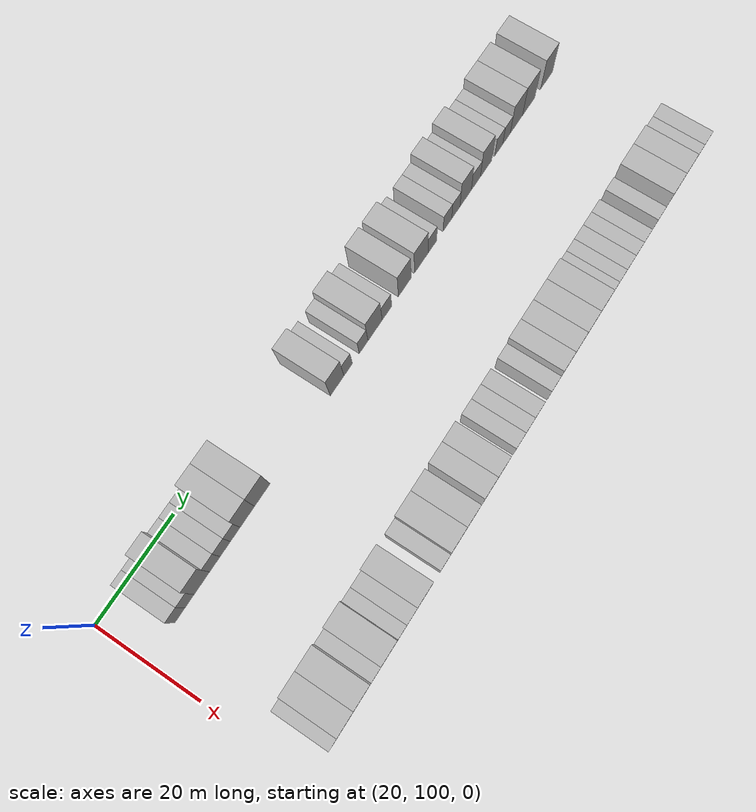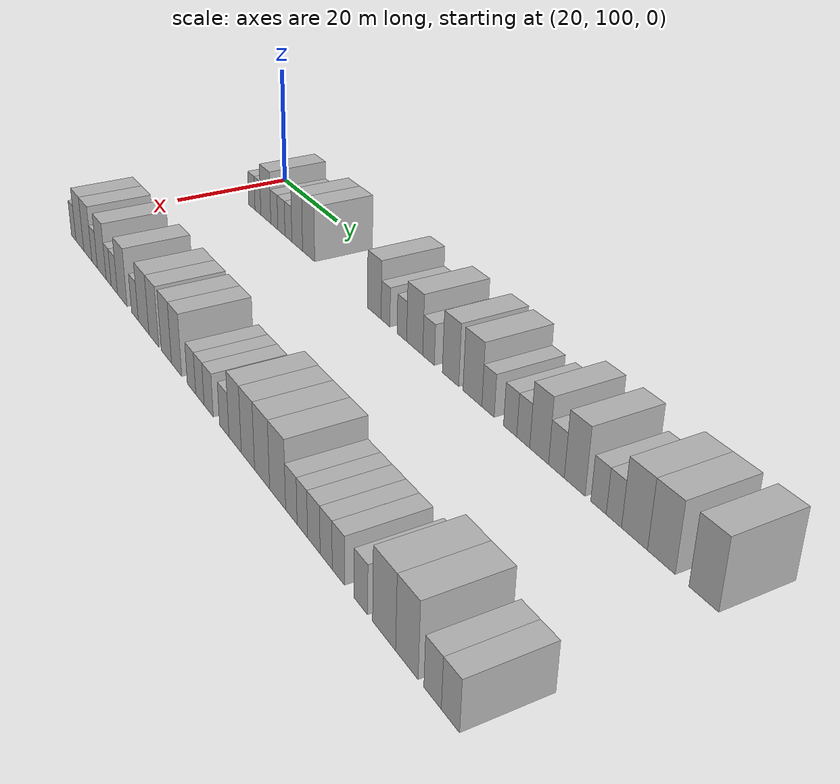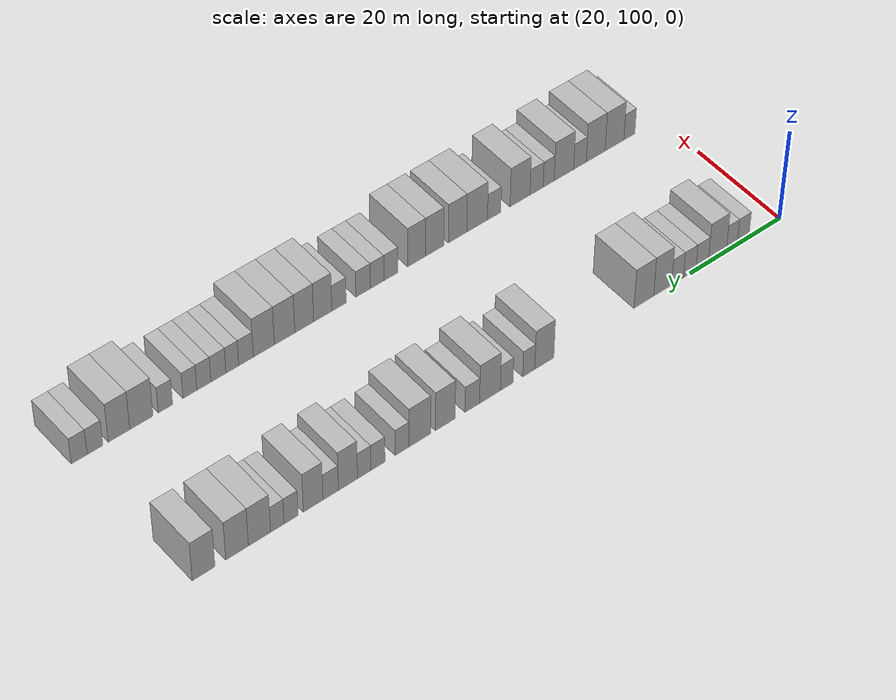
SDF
<sdf version="1.6">
 <world name="default">
  <model name="building_87">
   <static>1</static>
   <pose>25.0000 108.2637 0 0.000000 0.000000 0.000000</pose>
   <link name="link">
    <pose>0 0 3.00 0 0 0</pose>
    <collision name="collision"><geometry><box><size>10.0000 2.6179 6.0000</size></box></geometry></collision>
    <visual name="visual">
     <cast_shadows>0</cast_shadows>
     <geometry><box><size>10.0000 2.6179 6.0000</size></box></geometry>
     <material>
      <script>
       <uri>model://HANNAS_wall/materials/scripts</uri>
       <uri>model://HANNAS_wall/materials/textures</uri>
       <name>vrc/HANNAS_wall</name>
      </script>
     </material>
    </visual>
   </link>
  </model>
  <model name="building_88">
   <static>1</static>
   <pose>25.0000 110.7773 0 0.000000 0.000000 0.000000</pose>
   <link name="link">
    <pose>0 0 3.00 0 0 0</pose>
    <collision name="collision"><geometry><box><size>10.0000 2.4092 6.0000</size></box></geometry></collision>
    <visual name="visual">
     <cast_shadows>0</cast_shadows>
     <geometry><box><size>10.0000 2.4092 6.0000</size></box></geometry>
     <material>
      <script>
       <uri>model://HANNAS_wall/materials/scripts</uri>
       <uri>model://HANNAS_wall/materials/textures</uri>
       <name>vrc/HANNAS_wall</name>
      </script>
     </material>
    </visual>
   </link>
  </model>
  <model name="building_89">
   <static>1</static>
   <pose>25.0000 113.9736 0 0.000000 0.000000 0.000000</pose>
   <link name="link">
    <pose>0 0 4.50 0 0 0</pose>
    <collision name="collision"><geometry><box><size>10.0000 3.9834 9.0000</size></box></geometry></collision>
    <visual name="visual">
     <cast_shadows>0</cast_shadows>
     <geometry><box><size>10.0000 3.9834 9.0000</size></box></geometry>
     <material>
      <script>
       <uri>model://HANNAS_wall/materials/scripts</uri>
       <uri>model://HANNAS_wall/materials/textures</uri>
       <name>vrc/HANNAS_wall</name>
      </script>
     </material>
    </visual>
   </link>
  </model>
  <model name="building_90">
   <static>1</static>
   <pose>25.0000 117.3368 0 0.000000 0.000000 0.000000</pose>
   <link name="link">
    <pose>0 0 3.00 0 0 0</pose>
    <collision name="collision"><geometry><box><size>10.0000 2.7430 6.0000</size></box></geometry></collision>
    <visual name="visual">
     <cast_shadows>0</cast_shadows>
     <geometry><box><size>10.0000 2.7430 6.0000</size></box></geometry>
     <material>
      <script>
       <uri>model://HANNAS_wall/materials/scripts</uri>
       <uri>model://HANNAS_wall/materials/textures</uri>
       <name>vrc/HANNAS_wall</name>
      </script>
     </material>
    </visual>
   </link>
  </model>
  <model name="building_91">
   <static>1</static>
   <pose>25.0000 120.0666 0 0.000000 0.000000 0.000000</pose>
   <link name="link">
    <pose>0 0 3.00 0 0 0</pose>
    <collision name="collision"><geometry><box><size>10.0000 2.7166 6.0000</size></box></geometry></collision>
    <visual name="visual">
     <cast_shadows>0</cast_shadows>
     <geometry><box><size>10.0000 2.7166 6.0000</size></box></geometry>
     <material>
      <script>
       <uri>model://HANNAS_wall/materials/scripts</uri>
       <uri>model://HANNAS_wall/materials/textures</uri>
       <name>vrc/HANNAS_wall</name>
      </script>
     </material>
    </visual>
   </link>
  </model>
  <model name="building_92">
   <static>1</static>
   <pose>25.0000 122.7087 0 0.000000 0.000000 0.000000</pose>
   <link name="link">
    <pose>0 0 3.00 0 0 0</pose>
    <collision name="collision"><geometry><box><size>10.0000 2.5675 6.0000</size></box></geometry></collision>
    <visual name="visual">
     <cast_shadows>0</cast_shadows>
     <geometry><box><size>10.0000 2.5675 6.0000</size></box></geometry>
     <material>
      <script>
       <uri>model://HANNAS_wall/materials/scripts</uri>
       <uri>model://HANNAS_wall/materials/textures</uri>
       <name>vrc/HANNAS_wall</name>
      </script>
     </material>
    </visual>
   </link>
  </model>
  <model name="building_93">
   <static>1</static>
   <pose>25.0000 125.9374 0 0.000000 0.000000 0.000000</pose>
   <link name="link">
    <pose>0 0 4.50 0 0 0</pose>
    <collision name="collision"><geometry><box><size>10.0000 3.8900 9.0000</size></box></geometry></collision>
    <visual name="visual">
     <cast_shadows>0</cast_shadows>
     <geometry><box><size>10.0000 3.8900 9.0000</size></box></geometry>
     <material>
      <script>
       <uri>model://HANNAS_wall/materials/scripts</uri>
       <uri>model://HANNAS_wall/materials/textures</uri>
       <name>vrc/HANNAS_wall</name>
      </script>
     </material>
    </visual>
   </link>
  </model>
  <model name="building_94">
   <static>1</static>
   <pose>25.0000 130.0067 0 0.000000 0.000000 0.000000</pose>
   <link name="link">
    <pose>0 0 4.50 0 0 0</pose>
    <collision name="collision"><geometry><box><size>10.0000 4.2485 9.0000</size></box></geometry></collision>
    <visual name="visual">
     <cast_shadows>0</cast_shadows>
     <geometry><box><size>10.0000 4.2485 9.0000</size></box></geometry>
     <material>
      <script>
       <uri>model://HANNAS_wall/materials/scripts</uri>
       <uri>model://HANNAS_wall/materials/textures</uri>
       <name>vrc/HANNAS_wall</name>
      </script>
     </material>
    </visual>
   </link>
  </model>
  <model name="building_95">
   <static>1</static>
   <pose>25.0000 151.0812 0 0.000000 0.000000 0.000000</pose>
   <link name="link">
    <pose>0 0 4.50 0 0 0</pose>
    <collision name="collision"><geometry><box><size>10.0000 3.9669 9.0000</size></box></geometry></collision>
    <visual name="visual">
     <cast_shadows>0</cast_shadows>
     <geometry><box><size>10.0000 3.9669 9.0000</size></box></geometry>
     <material>
      <script>
       <uri>model://HANNAS_wall/materials/scripts</uri>
       <uri>model://HANNAS_wall/materials/textures</uri>
       <name>vrc/HANNAS_wall</name>
      </script>
     </material>
    </visual>
   </link>
  </model>
  <model name="building_96">
   <static>1</static>
   <pose>25.0000 154.3069 0 0.000000 0.000000 0.000000</pose>
   <link name="link">
    <pose>0 0 3.00 0 0 0</pose>
    <collision name="collision"><geometry><box><size>10.0000 2.4844 6.0000</size></box></geometry></collision>
    <visual name="visual">
     <cast_shadows>0</cast_shadows>
     <geometry><box><size>10.0000 2.4844 6.0000</size></box></geometry>
     <material>
      <script>
       <uri>model://HANNAS_wall/materials/scripts</uri>
       <uri>model://HANNAS_wall/materials/textures</uri>
       <name>vrc/HANNAS_wall</name>
      </script>
     </material>
    </visual>
   </link>
  </model>
  <model name="building_97">
   <static>1</static>
   <pose>25.0000 158.8505 0 0.000000 0.000000 0.000000</pose>
   <link name="link">
    <pose>0 0 3.00 0 0 0</pose>
    <collision name="collision"><geometry><box><size>10.0000 2.6029 6.0000</size></box></geometry></collision>
    <visual name="visual">
     <cast_shadows>0</cast_shadows>
     <geometry><box><size>10.0000 2.6029 6.0000</size></box></geometry>
     <material>
      <script>
       <uri>model://HANNAS_wall/materials/scripts</uri>
       <uri>model://HANNAS_wall/materials/textures</uri>
       <name>vrc/HANNAS_wall</name>
      </script>
     </material>
    </visual>
   </link>
  </model>
  <model name="building_98">
   <static>1</static>
   <pose>25.0000 162.2706 0 0.000000 0.000000 0.000000</pose>
   <link name="link">
    <pose>0 0 4.50 0 0 0</pose>
    <collision name="collision"><geometry><box><size>10.0000 4.2372 9.0000</size></box></geometry></collision>
    <visual name="visual">
     <cast_shadows>0</cast_shadows>
     <geometry><box><size>10.0000 4.2372 9.0000</size></box></geometry>
     <material>
      <script>
       <uri>model://HANNAS_wall/materials/scripts</uri>
       <uri>model://HANNAS_wall/materials/textures</uri>
       <name>vrc/HANNAS_wall</name>
      </script>
     </material>
    </visual>
   </link>
  </model>
  <model name="building_99">
   <static>1</static>
   <pose>25.0000 165.8592 0 0.000000 0.000000 0.000000</pose>
   <link name="link">
    <pose>0 0 3.00 0 0 0</pose>
    <collision name="collision"><geometry><box><size>10.0000 2.9401 6.0000</size></box></geometry></collision>
    <visual name="visual">
     <cast_shadows>0</cast_shadows>
     <geometry><box><size>10.0000 2.9401 6.0000</size></box></geometry>
     <material>
      <script>
       <uri>model://HANNAS_wall/materials/scripts</uri>
       <uri>model://HANNAS_wall/materials/textures</uri>
       <name>vrc/HANNAS_wall</name>
      </script>
     </material>
    </visual>
   </link>
  </model>
  <model name="building_100">
   <static>1</static>
   <pose>25.0000 171.3049 0 0.000000 0.000000 0.000000</pose>
   <link name="link">
    <pose>0 0 4.50 0 0 0</pose>
    <collision name="collision"><geometry><box><size>10.0000 3.9512 9.0000</size></box></geometry></collision>
    <visual name="visual">
     <cast_shadows>0</cast_shadows>
     <geometry><box><size>10.0000 3.9512 9.0000</size></box></geometry>
     <material>
      <script>
       <uri>model://HANNAS_wall/materials/scripts</uri>
       <uri>model://HANNAS_wall/materials/textures</uri>
       <name>vrc/HANNAS_wall</name>
      </script>
     </material>
    </visual>
   </link>
  </model>
  <model name="building_101">
   <static>1</static>
   <pose>25.0000 176.4357 0 0.000000 0.000000 0.000000</pose>
   <link name="link">
    <pose>0 0 4.50 0 0 0</pose>
    <collision name="collision"><geometry><box><size>10.0000 4.3106 9.0000</size></box></geometry></collision>
    <visual name="visual">
     <cast_shadows>0</cast_shadows>
     <geometry><box><size>10.0000 4.3106 9.0000</size></box></geometry>
     <material>
      <script>
       <uri>model://HANNAS_wall/materials/scripts</uri>
       <uri>model://HANNAS_wall/materials/textures</uri>
       <name>vrc/HANNAS_wall</name>
      </script>
     </material>
    </visual>
   </link>
  </model>
  <model name="building_102">
   <static>1</static>
   <pose>25.0000 179.9548 0 0.000000 0.000000 0.000000</pose>
   <link name="link">
    <pose>0 0 3.00 0 0 0</pose>
    <collision name="collision"><geometry><box><size>10.0000 2.7274 6.0000</size></box></geometry></collision>
    <visual name="visual">
     <cast_shadows>0</cast_shadows>
     <geometry><box><size>10.0000 2.7274 6.0000</size></box></geometry>
     <material>
      <script>
       <uri>model://HANNAS_wall/materials/scripts</uri>
       <uri>model://HANNAS_wall/materials/textures</uri>
       <name>vrc/HANNAS_wall</name>
      </script>
     </material>
    </visual>
   </link>
  </model>
  <model name="building_103">
   <static>1</static>
   <pose>25.0000 184.7003 0 0.000000 0.000000 0.000000</pose>
   <link name="link">
    <pose>0 0 3.00 0 0 0</pose>
    <collision name="collision"><geometry><box><size>10.0000 2.7638 6.0000</size></box></geometry></collision>
    <visual name="visual">
     <cast_shadows>0</cast_shadows>
     <geometry><box><size>10.0000 2.7638 6.0000</size></box></geometry>
     <material>
      <script>
       <uri>model://HANNAS_wall/materials/scripts</uri>
       <uri>model://HANNAS_wall/materials/textures</uri>
       <name>vrc/HANNAS_wall</name>
      </script>
     </material>
    </visual>
   </link>
  </model>
  <model name="building_104">
   <static>1</static>
   <pose>25.0000 187.4045 0 0.000000 0.000000 0.000000</pose>
   <link name="link">
    <pose>0 0 3.00 0 0 0</pose>
    <collision name="collision"><geometry><box><size>10.0000 2.6446 6.0000</size></box></geometry></collision>
    <visual name="visual">
     <cast_shadows>0</cast_shadows>
     <geometry><box><size>10.0000 2.6446 6.0000</size></box></geometry>
     <material>
      <script>
       <uri>model://HANNAS_wall/materials/scripts</uri>
       <uri>model://HANNAS_wall/materials/textures</uri>
       <name>vrc/HANNAS_wall</name>
      </script>
     </material>
    </visual>
   </link>
  </model>
  <model name="building_105">
   <static>1</static>
   <pose>25.0000 190.5795 0 0.000000 0.000000 0.000000</pose>
   <link name="link">
    <pose>0 0 4.50 0 0 0</pose>
    <collision name="collision"><geometry><box><size>10.0000 3.7053 9.0000</size></box></geometry></collision>
    <visual name="visual">
     <cast_shadows>0</cast_shadows>
     <geometry><box><size>10.0000 3.7053 9.0000</size></box></geometry>
     <material>
      <script>
       <uri>model://HANNAS_wall/materials/scripts</uri>
       <uri>model://HANNAS_wall/materials/textures</uri>
       <name>vrc/HANNAS_wall</name>
      </script>
     </material>
    </visual>
   </link>
  </model>
  <model name="building_106">
   <static>1</static>
   <pose>25.0000 193.9205 0 0.000000 0.000000 0.000000</pose>
   <link name="link">
    <pose>0 0 3.00 0 0 0</pose>
    <collision name="collision"><geometry><box><size>10.0000 2.9768 6.0000</size></box></geometry></collision>
    <visual name="visual">
     <cast_shadows>0</cast_shadows>
     <geometry><box><size>10.0000 2.9768 6.0000</size></box></geometry>
     <material>
      <script>
       <uri>model://HANNAS_wall/materials/scripts</uri>
       <uri>model://HANNAS_wall/materials/textures</uri>
       <name>vrc/HANNAS_wall</name>
      </script>
     </material>
    </visual>
   </link>
  </model>
  <model name="building_107">
   <static>1</static>
   <pose>25.0000 197.3008 0 0.000000 0.000000 0.000000</pose>
   <link name="link">
    <pose>0 0 4.50 0 0 0</pose>
    <collision name="collision"><geometry><box><size>10.0000 3.7839 9.0000</size></box></geometry></collision>
    <visual name="visual">
     <cast_shadows>0</cast_shadows>
     <geometry><box><size>10.0000 3.7839 9.0000</size></box></geometry>
     <material>
      <script>
       <uri>model://HANNAS_wall/materials/scripts</uri>
       <uri>model://HANNAS_wall/materials/textures</uri>
       <name>vrc/HANNAS_wall</name>
      </script>
     </material>
    </visual>
   </link>
  </model>
  <model name="building_108">
   <static>1</static>
   <pose>25.0000 201.5291 0 0.000000 0.000000 0.000000</pose>
   <link name="link">
    <pose>0 0 3.00 0 0 0</pose>
    <collision name="collision"><geometry><box><size>10.0000 2.6726 6.0000</size></box></geometry></collision>
    <visual name="visual">
     <cast_shadows>0</cast_shadows>
     <geometry><box><size>10.0000 2.6726 6.0000</size></box></geometry>
     <material>
      <script>
       <uri>model://HANNAS_wall/materials/scripts</uri>
       <uri>model://HANNAS_wall/materials/textures</uri>
       <name>vrc/HANNAS_wall</name>
      </script>
     </material>
    </visual>
   </link>
  </model>
  <model name="building_109">
   <static>1</static>
   <pose>25.0000 204.1501 0 0.000000 0.000000 0.000000</pose>
   <link name="link">
    <pose>0 0 3.00 0 0 0</pose>
    <collision name="collision"><geometry><box><size>10.0000 2.5695 6.0000</size></box></geometry></collision>
    <visual name="visual">
     <cast_shadows>0</cast_shadows>
     <geometry><box><size>10.0000 2.5695 6.0000</size></box></geometry>
     <material>
      <script>
       <uri>model://HANNAS_wall/materials/scripts</uri>
       <uri>model://HANNAS_wall/materials/textures</uri>
       <name>vrc/HANNAS_wall</name>
      </script>
     </material>
    </visual>
   </link>
  </model>
  <model name="building_110">
   <static>1</static>
   <pose>25.0000 207.5274 0 0.000000 0.000000 0.000000</pose>
   <link name="link">
    <pose>0 0 4.50 0 0 0</pose>
    <collision name="collision"><geometry><box><size>10.0000 4.1852 9.0000</size></box></geometry></collision>
    <visual name="visual">
     <cast_shadows>0</cast_shadows>
     <geometry><box><size>10.0000 4.1852 9.0000</size></box></geometry>
     <material>
      <script>
       <uri>model://HANNAS_wall/materials/scripts</uri>
       <uri>model://HANNAS_wall/materials/textures</uri>
       <name>vrc/HANNAS_wall</name>
      </script>
     </material>
    </visual>
   </link>
  </model>
  <model name="building_111">
   <static>1</static>
   <pose>25.0000 211.7468 0 0.000000 0.000000 0.000000</pose>
   <link name="link">
    <pose>0 0 4.50 0 0 0</pose>
    <collision name="collision"><geometry><box><size>10.0000 4.2535 9.0000</size></box></geometry></collision>
    <visual name="visual">
     <cast_shadows>0</cast_shadows>
     <geometry><box><size>10.0000 4.2535 9.0000</size></box></geometry>
     <material>
      <script>
       <uri>model://HANNAS_wall/materials/scripts</uri>
       <uri>model://HANNAS_wall/materials/textures</uri>
       <name>vrc/HANNAS_wall</name>
      </script>
     </material>
    </visual>
   </link>
  </model>
  <model name="building_112">
   <static>1</static>
   <pose>25.0000 217.9808 0 0.000000 0.000000 0.000000</pose>
   <link name="link">
    <pose>0 0 4.50 0 0 0</pose>
    <collision name="collision"><geometry><box><size>10.0000 4.2145 9.0000</size></box></geometry></collision>
    <visual name="visual">
     <cast_shadows>0</cast_shadows>
     <geometry><box><size>10.0000 4.2145 9.0000</size></box></geometry>
     <material>
      <script>
       <uri>model://HANNAS_wall/materials/scripts</uri>
       <uri>model://HANNAS_wall/materials/textures</uri>
       <name>vrc/HANNAS_wall</name>
      </script>
     </material>
    </visual>
   </link>
  </model>
  <model name="building_198">
   <static>1</static>
   <pose>55.0000 106.7141 0 0.000000 0.000000 0.000000</pose>
   <link name="link">
    <pose>0 0 3.00 0 0 0</pose>
    <collision name="collision"><geometry><box><size>10.0000 2.4691 6.0000</size></box></geometry></collision>
    <visual name="visual">
     <cast_shadows>0</cast_shadows>
     <geometry><box><size>10.0000 2.4691 6.0000</size></box></geometry>
     <material>
      <script>
       <uri>model://HANNAS_wall/materials/scripts</uri>
       <uri>model://HANNAS_wall/materials/textures</uri>
       <name>vrc/HANNAS_wall</name>
      </script>
     </material>
    </visual>
   </link>
  </model>
  <model name="building_199">
   <static>1</static>
   <pose>55.0000 110.0464 0 0.000000 0.000000 0.000000</pose>
   <link name="link">
    <pose>0 0 4.50 0 0 0</pose>
    <collision name="collision"><geometry><box><size>10.0000 4.1954 9.0000</size></box></geometry></collision>
    <visual name="visual">
     <cast_shadows>0</cast_shadows>
     <geometry><box><size>10.0000 4.1954 9.0000</size></box></geometry>
     <material>
      <script>
       <uri>model://HANNAS_wall/materials/scripts</uri>
       <uri>model://HANNAS_wall/materials/textures</uri>
       <name>vrc/HANNAS_wall</name>
      </script>
     </material>
    </visual>
   </link>
  </model>
  <model name="building_200">
   <static>1</static>
   <pose>55.0000 114.2610 0 0.000000 0.000000 0.000000</pose>
   <link name="link">
    <pose>0 0 4.50 0 0 0</pose>
    <collision name="collision"><geometry><box><size>10.0000 4.2338 9.0000</size></box></geometry></collision>
    <visual name="visual">
     <cast_shadows>0</cast_shadows>
     <geometry><box><size>10.0000 4.2338 9.0000</size></box></geometry>
     <material>
      <script>
       <uri>model://HANNAS_wall/materials/scripts</uri>
       <uri>model://HANNAS_wall/materials/textures</uri>
       <name>vrc/HANNAS_wall</name>
      </script>
     </material>
    </visual>
   </link>
  </model>
  <model name="building_201">
   <static>1</static>
   <pose>55.0000 117.7679 0 0.000000 0.000000 0.000000</pose>
   <link name="link">
    <pose>0 0 3.00 0 0 0</pose>
    <collision name="collision"><geometry><box><size>10.0000 2.7801 6.0000</size></box></geometry></collision>
    <visual name="visual">
     <cast_shadows>0</cast_shadows>
     <geometry><box><size>10.0000 2.7801 6.0000</size></box></geometry>
     <material>
      <script>
       <uri>model://HANNAS_wall/materials/scripts</uri>
       <uri>model://HANNAS_wall/materials/textures</uri>
       <name>vrc/HANNAS_wall</name>
      </script>
     </material>
    </visual>
   </link>
  </model>
  <model name="building_202">
   <static>1</static>
   <pose>55.0000 121.3101 0 0.000000 0.000000 0.000000</pose>
   <link name="link">
    <pose>0 0 4.50 0 0 0</pose>
    <collision name="collision"><geometry><box><size>10.0000 4.3043 9.0000</size></box></geometry></collision>
    <visual name="visual">
     <cast_shadows>0</cast_shadows>
     <geometry><box><size>10.0000 4.3043 9.0000</size></box></geometry>
     <material>
      <script>
       <uri>model://HANNAS_wall/materials/scripts</uri>
       <uri>model://HANNAS_wall/materials/textures</uri>
       <name>vrc/HANNAS_wall</name>
      </script>
     </material>
    </visual>
   </link>
  </model>
  <model name="building_203">
   <static>1</static>
   <pose>55.0000 124.6655 0 0.000000 0.000000 0.000000</pose>
   <link name="link">
    <pose>0 0 3.00 0 0 0</pose>
    <collision name="collision"><geometry><box><size>10.0000 2.4064 6.0000</size></box></geometry></collision>
    <visual name="visual">
     <cast_shadows>0</cast_shadows>
     <geometry><box><size>10.0000 2.4064 6.0000</size></box></geometry>
     <material>
      <script>
       <uri>model://HANNAS_wall/materials/scripts</uri>
       <uri>model://HANNAS_wall/materials/textures</uri>
       <name>vrc/HANNAS_wall</name>
      </script>
     </material>
    </visual>
   </link>
  </model>
  <model name="building_204">
   <static>1</static>
   <pose>55.0000 127.3138 0 0.000000 0.000000 0.000000</pose>
   <link name="link">
    <pose>0 0 3.00 0 0 0</pose>
    <collision name="collision"><geometry><box><size>10.0000 2.8902 6.0000</size></box></geometry></collision>
    <visual name="visual">
     <cast_shadows>0</cast_shadows>
     <geometry><box><size>10.0000 2.8902 6.0000</size></box></geometry>
     <material>
      <script>
       <uri>model://HANNAS_wall/materials/scripts</uri>
       <uri>model://HANNAS_wall/materials/textures</uri>
       <name>vrc/HANNAS_wall</name>
      </script>
     </material>
    </visual>
   </link>
  </model>
  <model name="building_205">
   <static>1</static>
   <pose>55.0000 130.9171 0 0.000000 0.000000 0.000000</pose>
   <link name="link">
    <pose>0 0 4.50 0 0 0</pose>
    <collision name="collision"><geometry><box><size>10.0000 4.3162 9.0000</size></box></geometry></collision>
    <visual name="visual">
     <cast_shadows>0</cast_shadows>
     <geometry><box><size>10.0000 4.3162 9.0000</size></box></geometry>
     <material>
      <script>
       <uri>model://HANNAS_wall/materials/scripts</uri>
       <uri>model://HANNAS_wall/materials/textures</uri>
       <name>vrc/HANNAS_wall</name>
      </script>
     </material>
    </visual>
   </link>
  </model>
  <model name="building_206">
   <static>1</static>
   <pose>55.0000 136.5026 0 0.000000 0.000000 0.000000</pose>
   <link name="link">
    <pose>0 0 3.00 0 0 0</pose>
    <collision name="collision"><geometry><box><size>10.0000 2.8548 6.0000</size></box></geometry></collision>
    <visual name="visual">
     <cast_shadows>0</cast_shadows>
     <geometry><box><size>10.0000 2.8548 6.0000</size></box></geometry>
     <material>
      <script>
       <uri>model://HANNAS_wall/materials/scripts</uri>
       <uri>model://HANNAS_wall/materials/textures</uri>
       <name>vrc/HANNAS_wall</name>
      </script>
     </material>
    </visual>
   </link>
  </model>
  <model name="building_207">
   <static>1</static>
   <pose>55.0000 140.1453 0 0.000000 0.000000 0.000000</pose>
   <link name="link">
    <pose>0 0 4.50 0 0 0</pose>
    <collision name="collision"><geometry><box><size>10.0000 4.4307 9.0000</size></box></geometry></collision>
    <visual name="visual">
     <cast_shadows>0</cast_shadows>
     <geometry><box><size>10.0000 4.4307 9.0000</size></box></geometry>
     <material>
      <script>
       <uri>model://HANNAS_wall/materials/scripts</uri>
       <uri>model://HANNAS_wall/materials/textures</uri>
       <name>vrc/HANNAS_wall</name>
      </script>
     </material>
    </visual>
   </link>
  </model>
  <model name="building_208">
   <static>1</static>
   <pose>55.0000 144.3105 0 0.000000 0.000000 0.000000</pose>
   <link name="link">
    <pose>0 0 4.50 0 0 0</pose>
    <collision name="collision"><geometry><box><size>10.0000 3.8997 9.0000</size></box></geometry></collision>
    <visual name="visual">
     <cast_shadows>0</cast_shadows>
     <geometry><box><size>10.0000 3.8997 9.0000</size></box></geometry>
     <material>
      <script>
       <uri>model://HANNAS_wall/materials/scripts</uri>
       <uri>model://HANNAS_wall/materials/textures</uri>
       <name>vrc/HANNAS_wall</name>
      </script>
     </material>
    </visual>
   </link>
  </model>
  <model name="building_209">
   <static>1</static>
   <pose>55.0000 149.1915 0 0.000000 0.000000 0.000000</pose>
   <link name="link">
    <pose>0 0 4.50 0 0 0</pose>
    <collision name="collision"><geometry><box><size>10.0000 3.8621 9.0000</size></box></geometry></collision>
    <visual name="visual">
     <cast_shadows>0</cast_shadows>
     <geometry><box><size>10.0000 3.8621 9.0000</size></box></geometry>
     <material>
      <script>
       <uri>model://HANNAS_wall/materials/scripts</uri>
       <uri>model://HANNAS_wall/materials/textures</uri>
       <name>vrc/HANNAS_wall</name>
      </script>
     </material>
    </visual>
   </link>
  </model>
  <model name="building_210">
   <static>1</static>
   <pose>55.0000 152.9805 0 0.000000 0.000000 0.000000</pose>
   <link name="link">
    <pose>0 0 4.50 0 0 0</pose>
    <collision name="collision"><geometry><box><size>10.0000 3.7160 9.0000</size></box></geometry></collision>
    <visual name="visual">
     <cast_shadows>0</cast_shadows>
     <geometry><box><size>10.0000 3.7160 9.0000</size></box></geometry>
     <material>
      <script>
       <uri>model://HANNAS_wall/materials/scripts</uri>
       <uri>model://HANNAS_wall/materials/textures</uri>
       <name>vrc/HANNAS_wall</name>
      </script>
     </material>
    </visual>
   </link>
  </model>
  <model name="building_211">
   <static>1</static>
   <pose>55.0000 158.3018 0 0.000000 0.000000 0.000000</pose>
   <link name="link">
    <pose>0 0 3.00 0 0 0</pose>
    <collision name="collision"><geometry><box><size>10.0000 2.9266 6.0000</size></box></geometry></collision>
    <visual name="visual">
     <cast_shadows>0</cast_shadows>
     <geometry><box><size>10.0000 2.9266 6.0000</size></box></geometry>
     <material>
      <script>
       <uri>model://HANNAS_wall/materials/scripts</uri>
       <uri>model://HANNAS_wall/materials/textures</uri>
       <name>vrc/HANNAS_wall</name>
      </script>
     </material>
    </visual>
   </link>
  </model>
  <model name="building_212">
   <static>1</static>
   <pose>55.0000 161.1703 0 0.000000 0.000000 0.000000</pose>
   <link name="link">
    <pose>0 0 3.00 0 0 0</pose>
    <collision name="collision"><geometry><box><size>10.0000 2.8104 6.0000</size></box></geometry></collision>
    <visual name="visual">
     <cast_shadows>0</cast_shadows>
     <geometry><box><size>10.0000 2.8104 6.0000</size></box></geometry>
     <material>
      <script>
       <uri>model://HANNAS_wall/materials/scripts</uri>
       <uri>model://HANNAS_wall/materials/textures</uri>
       <name>vrc/HANNAS_wall</name>
      </script>
     </material>
    </visual>
   </link>
  </model>
  <model name="building_213">
   <static>1</static>
   <pose>55.0000 164.0654 0 0.000000 0.000000 0.000000</pose>
   <link name="link">
    <pose>0 0 3.00 0 0 0</pose>
    <collision name="collision"><geometry><box><size>10.0000 2.9799 6.0000</size></box></geometry></collision>
    <visual name="visual">
     <cast_shadows>0</cast_shadows>
     <geometry><box><size>10.0000 2.9799 6.0000</size></box></geometry>
     <material>
      <script>
       <uri>model://HANNAS_wall/materials/scripts</uri>
       <uri>model://HANNAS_wall/materials/textures</uri>
       <name>vrc/HANNAS_wall</name>
      </script>
     </material>
    </visual>
   </link>
  </model>
  <model name="building_214">
   <static>1</static>
   <pose>55.0000 169.0217 0 0.000000 0.000000 0.000000</pose>
   <link name="link">
    <pose>0 0 3.00 0 0 0</pose>
    <collision name="collision"><geometry><box><size>10.0000 2.9326 6.0000</size></box></geometry></collision>
    <visual name="visual">
     <cast_shadows>0</cast_shadows>
     <geometry><box><size>10.0000 2.9326 6.0000</size></box></geometry>
     <material>
      <script>
       <uri>model://HANNAS_wall/materials/scripts</uri>
       <uri>model://HANNAS_wall/materials/textures</uri>
       <name>vrc/HANNAS_wall</name>
      </script>
     </material>
    </visual>
   </link>
  </model>
  <model name="building_215">
   <static>1</static>
   <pose>55.0000 172.3337 0 0.000000 0.000000 0.000000</pose>
   <link name="link">
    <pose>0 0 4.50 0 0 0</pose>
    <collision name="collision"><geometry><box><size>10.0000 3.6914 9.0000</size></box></geometry></collision>
    <visual name="visual">
     <cast_shadows>0</cast_shadows>
     <geometry><box><size>10.0000 3.6914 9.0000</size></box></geometry>
     <material>
      <script>
       <uri>model://HANNAS_wall/materials/scripts</uri>
       <uri>model://HANNAS_wall/materials/textures</uri>
       <name>vrc/HANNAS_wall</name>
      </script>
     </material>
    </visual>
   </link>
  </model>
  <model name="building_216">
   <static>1</static>
   <pose>55.0000 176.0764 0 0.000000 0.000000 0.000000</pose>
   <link name="link">
    <pose>0 0 4.50 0 0 0</pose>
    <collision name="collision"><geometry><box><size>10.0000 3.7939 9.0000</size></box></geometry></collision>
    <visual name="visual">
     <cast_shadows>0</cast_shadows>
     <geometry><box><size>10.0000 3.7939 9.0000</size></box></geometry>
     <material>
      <script>
       <uri>model://HANNAS_wall/materials/scripts</uri>
       <uri>model://HANNAS_wall/materials/textures</uri>
       <name>vrc/HANNAS_wall</name>
      </script>
     </material>
    </visual>
   </link>
  </model>
  <model name="building_217">
   <static>1</static>
   <pose>55.0000 180.0321 0 0.000000 0.000000 0.000000</pose>
   <link name="link">
    <pose>0 0 4.50 0 0 0</pose>
    <collision name="collision"><geometry><box><size>10.0000 4.1175 9.0000</size></box></geometry></collision>
    <visual name="visual">
     <cast_shadows>0</cast_shadows>
     <geometry><box><size>10.0000 4.1175 9.0000</size></box></geometry>
     <material>
      <script>
       <uri>model://HANNAS_wall/materials/scripts</uri>
       <uri>model://HANNAS_wall/materials/textures</uri>
       <name>vrc/HANNAS_wall</name>
      </script>
     </material>
    </visual>
   </link>
  </model>
  <model name="building_218">
   <static>1</static>
   <pose>55.0000 184.1823 0 0.000000 0.000000 0.000000</pose>
   <link name="link">
    <pose>0 0 4.50 0 0 0</pose>
    <collision name="collision"><geometry><box><size>10.0000 4.1830 9.0000</size></box></geometry></collision>
    <visual name="visual">
     <cast_shadows>0</cast_shadows>
     <geometry><box><size>10.0000 4.1830 9.0000</size></box></geometry>
     <material>
      <script>
       <uri>model://HANNAS_wall/materials/scripts</uri>
       <uri>model://HANNAS_wall/materials/textures</uri>
       <name>vrc/HANNAS_wall</name>
      </script>
     </material>
    </visual>
   </link>
  </model>
  <model name="building_219">
   <static>1</static>
   <pose>55.0000 187.7108 0 0.000000 0.000000 0.000000</pose>
   <link name="link">
    <pose>0 0 3.00 0 0 0</pose>
    <collision name="collision"><geometry><box><size>10.0000 2.8740 6.0000</size></box></geometry></collision>
    <visual name="visual">
     <cast_shadows>0</cast_shadows>
     <geometry><box><size>10.0000 2.8740 6.0000</size></box></geometry>
     <material>
      <script>
       <uri>model://HANNAS_wall/materials/scripts</uri>
       <uri>model://HANNAS_wall/materials/textures</uri>
       <name>vrc/HANNAS_wall</name>
      </script>
     </material>
    </visual>
   </link>
  </model>
  <model name="building_220">
   <static>1</static>
   <pose>55.0000 190.4092 0 0.000000 0.000000 0.000000</pose>
   <link name="link">
    <pose>0 0 3.00 0 0 0</pose>
    <collision name="collision"><geometry><box><size>10.0000 2.5228 6.0000</size></box></geometry></collision>
    <visual name="visual">
     <cast_shadows>0</cast_shadows>
     <geometry><box><size>10.0000 2.5228 6.0000</size></box></geometry>
     <material>
      <script>
       <uri>model://HANNAS_wall/materials/scripts</uri>
       <uri>model://HANNAS_wall/materials/textures</uri>
       <name>vrc/HANNAS_wall</name>
      </script>
     </material>
    </visual>
   </link>
  </model>
  <model name="building_221">
   <static>1</static>
   <pose>55.0000 193.1383 0 0.000000 0.000000 0.000000</pose>
   <link name="link">
    <pose>0 0 3.00 0 0 0</pose>
    <collision name="collision"><geometry><box><size>10.0000 2.9354 6.0000</size></box></geometry></collision>
    <visual name="visual">
     <cast_shadows>0</cast_shadows>
     <geometry><box><size>10.0000 2.9354 6.0000</size></box></geometry>
     <material>
      <script>
       <uri>model://HANNAS_wall/materials/scripts</uri>
       <uri>model://HANNAS_wall/materials/textures</uri>
       <name>vrc/HANNAS_wall</name>
      </script>
     </material>
    </visual>
   </link>
  </model>
  <model name="building_222">
   <static>1</static>
   <pose>55.0000 195.9766 0 0.000000 0.000000 0.000000</pose>
   <link name="link">
    <pose>0 0 3.00 0 0 0</pose>
    <collision name="collision"><geometry><box><size>10.0000 2.7413 6.0000</size></box></geometry></collision>
    <visual name="visual">
     <cast_shadows>0</cast_shadows>
     <geometry><box><size>10.0000 2.7413 6.0000</size></box></geometry>
     <material>
      <script>
       <uri>model://HANNAS_wall/materials/scripts</uri>
       <uri>model://HANNAS_wall/materials/textures</uri>
       <name>vrc/HANNAS_wall</name>
      </script>
     </material>
    </visual>
   </link>
  </model>
  <model name="building_223">
   <static>1</static>
   <pose>55.0000 198.6980 0 0.000000 0.000000 0.000000</pose>
   <link name="link">
    <pose>0 0 3.00 0 0 0</pose>
    <collision name="collision"><geometry><box><size>10.0000 2.7013 6.0000</size></box></geometry></collision>
    <visual name="visual">
     <cast_shadows>0</cast_shadows>
     <geometry><box><size>10.0000 2.7013 6.0000</size></box></geometry>
     <material>
      <script>
       <uri>model://HANNAS_wall/materials/scripts</uri>
       <uri>model://HANNAS_wall/materials/textures</uri>
       <name>vrc/HANNAS_wall</name>
      </script>
     </material>
    </visual>
   </link>
  </model>
  <model name="building_224">
   <static>1</static>
   <pose>55.0000 203.4394 0 0.000000 0.000000 0.000000</pose>
   <link name="link">
    <pose>0 0 3.00 0 0 0</pose>
    <collision name="collision"><geometry><box><size>10.0000 2.7816 6.0000</size></box></geometry></collision>
    <visual name="visual">
     <cast_shadows>0</cast_shadows>
     <geometry><box><size>10.0000 2.7816 6.0000</size></box></geometry>
     <material>
      <script>
       <uri>model://HANNAS_wall/materials/scripts</uri>
       <uri>model://HANNAS_wall/materials/textures</uri>
       <name>vrc/HANNAS_wall</name>
      </script>
     </material>
    </visual>
   </link>
  </model>
  <model name="building_225">
   <static>1</static>
   <pose>55.0000 208.0523 0 0.000000 0.000000 0.000000</pose>
   <link name="link">
    <pose>0 0 4.50 0 0 0</pose>
    <collision name="collision"><geometry><box><size>10.0000 4.4441 9.0000</size></box></geometry></collision>
    <visual name="visual">
     <cast_shadows>0</cast_shadows>
     <geometry><box><size>10.0000 4.4441 9.0000</size></box></geometry>
     <material>
      <script>
       <uri>model://HANNAS_wall/materials/scripts</uri>
       <uri>model://HANNAS_wall/materials/textures</uri>
       <name>vrc/HANNAS_wall</name>
      </script>
     </material>
    </visual>
   </link>
  </model>
  <model name="building_226">
   <static>1</static>
   <pose>55.0000 212.3215 0 0.000000 0.000000 0.000000</pose>
   <link name="link">
    <pose>0 0 4.50 0 0 0</pose>
    <collision name="collision"><geometry><box><size>10.0000 4.0942 9.0000</size></box></geometry></collision>
    <visual name="visual">
     <cast_shadows>0</cast_shadows>
     <geometry><box><size>10.0000 4.0942 9.0000</size></box></geometry>
     <material>
      <script>
       <uri>model://HANNAS_wall/materials/scripts</uri>
       <uri>model://HANNAS_wall/materials/textures</uri>
       <name>vrc/HANNAS_wall</name>
      </script>
     </material>
    </visual>
   </link>
  </model>
  <model name="building_227">
   <static>1</static>
   <pose>55.0000 216.8547 0 0.000000 0.000000 0.000000</pose>
   <link name="link">
    <pose>0 0 3.00 0 0 0</pose>
    <collision name="collision"><geometry><box><size>10.0000 2.9722 6.0000</size></box></geometry></collision>
    <visual name="visual">
     <cast_shadows>0</cast_shadows>
     <geometry><box><size>10.0000 2.9722 6.0000</size></box></geometry>
     <material>
      <script>
       <uri>model://HANNAS_wall/materials/scripts</uri>
       <uri>model://HANNAS_wall/materials/textures</uri>
       <name>vrc/HANNAS_wall</name>
      </script>
     </material>
    </visual>
   </link>
  </model>
  <model name="building_228">
   <static>1</static>
   <pose>55.0000 219.8339 0 0.000000 0.000000 0.000000</pose>
   <link name="link">
    <pose>0 0 3.00 0 0 0</pose>
    <collision name="collision"><geometry><box><size>10.0000 2.9863 6.0000</size></box></geometry></collision>
    <visual name="visual">
     <cast_shadows>0</cast_shadows>
     <geometry><box><size>10.0000 2.9863 6.0000</size></box></geometry>
     <material>
      <script>
       <uri>model://HANNAS_wall/materials/scripts</uri>
       <uri>model://HANNAS_wall/materials/textures</uri>
       <name>vrc/HANNAS_wall</name>
      </script>
     </material>
    </visual>
   </link>
  </model>
 </world>
</sdf>
